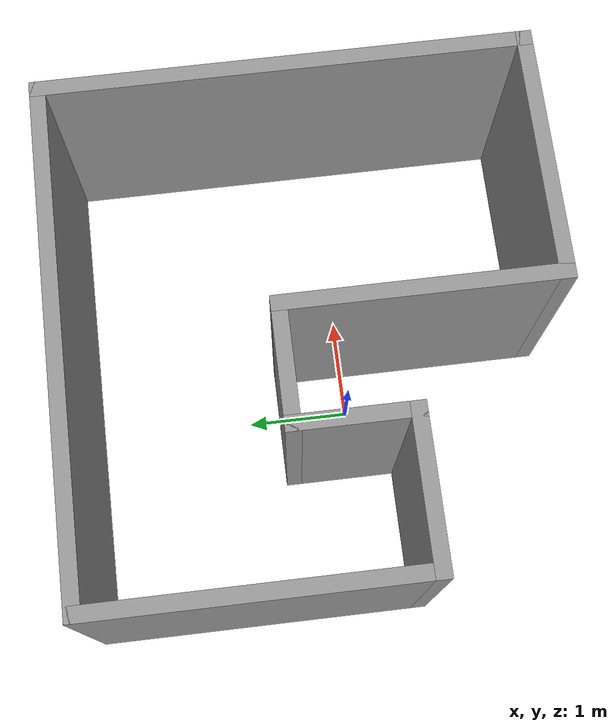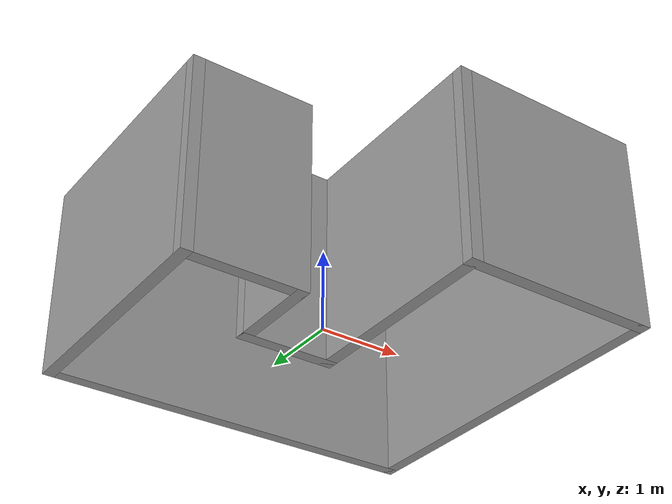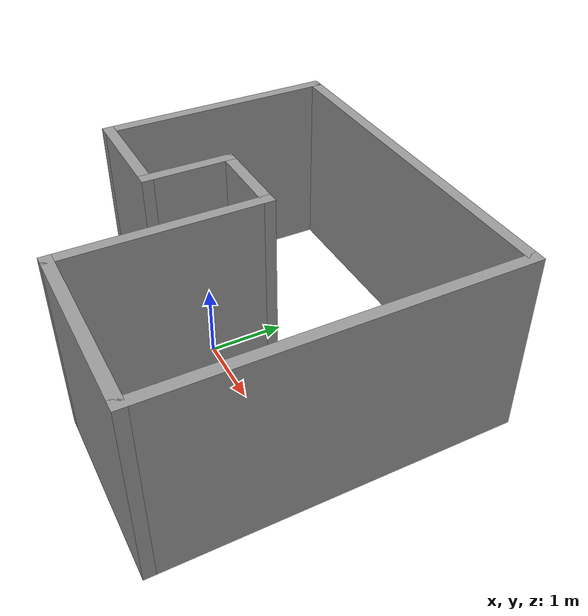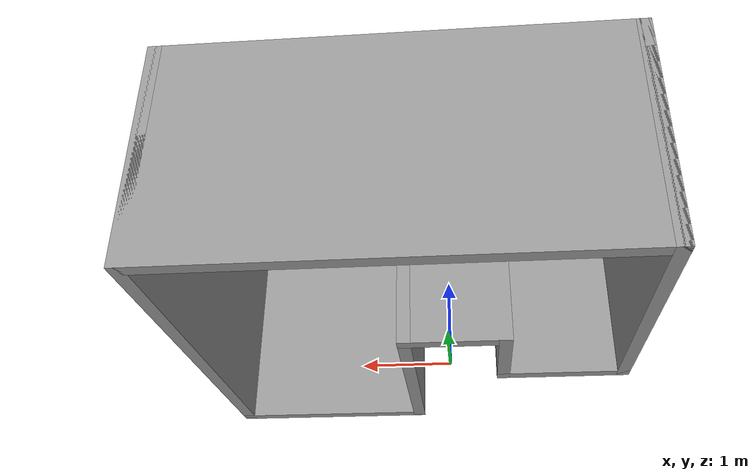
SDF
<?xml version='1.0'?>
<sdf version='1.7'>
  <model name='intro.world'>
    <pose>0.415 0.32 0 0 -0 0</pose>
    <link name='Wall_0'>
      <collision name='Wall_0_Collision'>
        <geometry>
          <box>
            <size>3.25 0.15 2.5</size>
          </box>
        </geometry>
        <pose>0 0 1.25 0 -0 0</pose>
      </collision>
      <visual name='Wall_0_Visual'>
        <pose>0 0 1.25 0 -0 0</pose>
        <geometry>
          <box>
            <size>3.25 0.15 2.5</size>
          </box>
        </geometry>
        <material>
          <script>
            <uri>file://media/materials/scripts/gazebo.material</uri>
            <name>Gazebo/Grey</name>
          </script>
          <ambient>1 1 1 1</ambient>
        </material>
        <meta>
          <layer>0</layer>
        </meta>
      </visual>
      <pose>-2.425 0.75 0 0 -0 1.5708</pose>
    </link>
    <link name='Wall_1'>
      <collision name='Wall_1_Collision'>
        <geometry>
          <box>
            <size>0.15 0.15 2.5</size>
          </box>
        </geometry>
        <pose>0 0 1.25 0 -0 0</pose>
      </collision>
      <visual name='Wall_1_Visual'>
        <pose>0 0 1.25 0 -0 0</pose>
        <geometry>
          <box>
            <size>0.15 0.15 2.5</size>
          </box>
        </geometry>
        <material>
          <script>
            <uri>file://media/materials/scripts/gazebo.material</uri>
            <name>Gazebo/Grey</name>
          </script>
          <ambient>1 1 1 1</ambient>
        </material>
        <meta>
          <layer>0</layer>
        </meta>
      </visual>
      <pose>-2.425 2.3 0 0 -0 0</pose>
    </link>
    <link name='Wall_2'>
      <collision name='Wall_2_Collision'>
        <geometry>
          <box>
            <size>5 0.15 2.5</size>
          </box>
        </geometry>
        <pose>0 0 1.25 0 -0 0</pose>
      </collision>
      <visual name='Wall_2_Visual'>
        <pose>0 0 1.25 0 -0 0</pose>
        <geometry>
          <box>
            <size>5 0.15 2.5</size>
          </box>
        </geometry>
        <material>
          <script>
            <uri>file://media/materials/scripts/gazebo.material</uri>
            <name>Gazebo/Grey</name>
          </script>
          <ambient>1 1 1 1</ambient>
        </material>
        <meta>
          <layer>0</layer>
        </meta>
      </visual>
      <pose>0 2.3 0 0 -0 0</pose>
    </link>
    <link name='Wall_3'>
      <collision name='Wall_3_Collision'>
        <geometry>
          <box>
            <size>4.75 0.15 2.5</size>
          </box>
        </geometry>
        <pose>0 0 1.25 0 -0 0</pose>
      </collision>
      <visual name='Wall_3_Visual'>
        <pose>0 0 1.25 0 -0 0</pose>
        <geometry>
          <box>
            <size>4.75 0.15 2.5</size>
          </box>
        </geometry>
        <material>
          <script>
            <uri>file://media/materials/scripts/gazebo.material</uri>
            <name>Gazebo/Grey</name>
          </script>
          <ambient>1 1 1 1</ambient>
        </material>
        <meta>
          <layer>0</layer>
        </meta>
      </visual>
      <pose>2.425 0 0 0 -0 -1.5708</pose>
    </link>
    <link name='Wall_4'>
      <collision name='Wall_4_Collision'>
        <geometry>
          <box>
            <size>2.5 0.15 2.5</size>
          </box>
        </geometry>
        <pose>0 0 1.25 0 -0 0</pose>
      </collision>
      <visual name='Wall_4_Visual'>
        <pose>0 0 1.25 0 -0 0</pose>
        <geometry>
          <box>
            <size>2.5 0.15 2.5</size>
          </box>
        </geometry>
        <material>
          <script>
            <uri>file://media/materials/scripts/gazebo.material</uri>
            <name>Gazebo/Grey</name>
          </script>
          <ambient>1 1 1 1</ambient>
        </material>
        <meta>
          <layer>0</layer>
        </meta>
      </visual>
      <pose>1.25 -2.3 0 0 -0 3.14159</pose>
    </link>
    <link name='Wall_5'>
      <collision name='Wall_5_Collision'>
        <geometry>
          <box>
            <size>2.75 0.15 2.5</size>
          </box>
        </geometry>
        <pose>0 0 1.25 0 -0 0</pose>
      </collision>
      <visual name='Wall_5_Visual'>
        <pose>0 0 1.25 0 -0 0</pose>
        <geometry>
          <box>
            <size>2.75 0.15 2.5</size>
          </box>
        </geometry>
        <material>
          <script>
            <uri>file://media/materials/scripts/gazebo.material</uri>
            <name>Gazebo/Grey</name>
          </script>
          <ambient>1 1 1 1</ambient>
        </material>
        <meta>
          <layer>0</layer>
        </meta>
      </visual>
      <pose>0.075 -1 0 0 -0 1.5708</pose>
    </link>
    <link name='Wall_6'>
      <collision name='Wall_6_Collision'>
        <geometry>
          <box>
            <size>1.25 0.15 2.5</size>
          </box>
        </geometry>
        <pose>0 0 1.25 0 -0 0</pose>
      </collision>
      <visual name='Wall_6_Visual'>
        <pose>0 0 1.25 0 -0 0</pose>
        <geometry>
          <box>
            <size>1.25 0.15 2.5</size>
          </box>
        </geometry>
        <material>
          <script>
            <uri>file://media/materials/scripts/gazebo.material</uri>
            <name>Gazebo/Grey</name>
          </script>
          <ambient>1 1 1 1</ambient>
        </material>
        <meta>
          <layer>0</layer>
        </meta>
      </visual>
      <pose>-0.475 0.3 0 0 -0 3.14159</pose>
    </link>
    <link name='Wall_7'>
      <collision name='Wall_7_Collision'>
        <geometry>
          <box>
            <size>1.25 0.15 2.5</size>
          </box>
        </geometry>
        <pose>0 0 1.25 0 -0 0</pose>
      </collision>
      <visual name='Wall_7_Visual'>
        <pose>0 0 1.25 0 -0 0</pose>
        <geometry>
          <box>
            <size>1.25 0.15 2.5</size>
          </box>
        </geometry>
        <material>
          <script>
            <uri>file://media/materials/scripts/gazebo.material</uri>
            <name>Gazebo/Grey</name>
          </script>
          <ambient>1 1 1 1</ambient>
        </material>
        <meta>
          <layer>0</layer>
        </meta>
      </visual>
      <pose>-1.025 -0.25 0 0 -0 -1.5708</pose>
    </link>
    <link name='Wall_8'>
      <collision name='Wall_8_Collision'>
        <geometry>
          <box>
            <size>1.55 0.15 2.5</size>
          </box>
        </geometry>
        <pose>0 0 1.25 0 -0 0</pose>
      </collision>
      <visual name='Wall_8_Visual'>
        <pose>0 0 1.25 0 -0 0</pose>
        <geometry>
          <box>
            <size>1.55 0.15 2.5</size>
          </box>
        </geometry>
        <material>
          <script>
            <uri>file://media/materials/scripts/gazebo.material</uri>
            <name>Gazebo/Grey</name>
          </script>
          <ambient>1 1 1 1</ambient>
        </material>
        <meta>
          <layer>0</layer>
        </meta>
      </visual>
      <pose>-1.725 -0.8 0 0 -0 3.14159</pose>
    </link>
    <static>1</static>
  </model>
</sdf>
